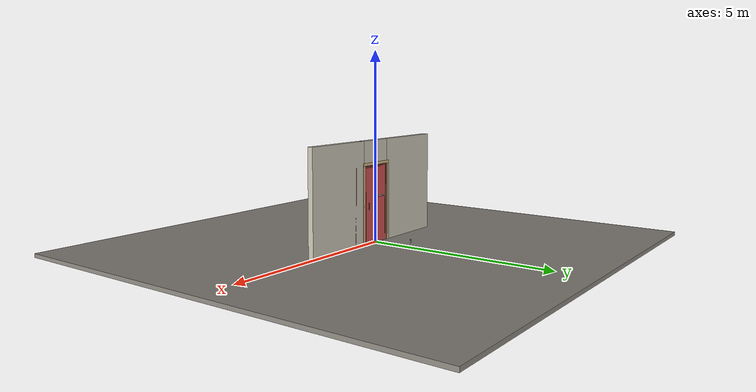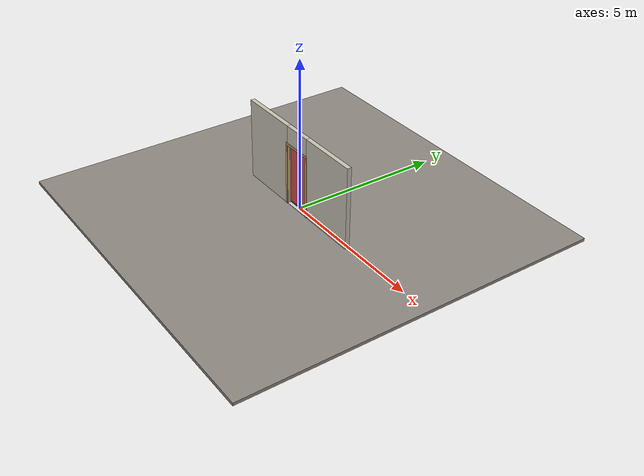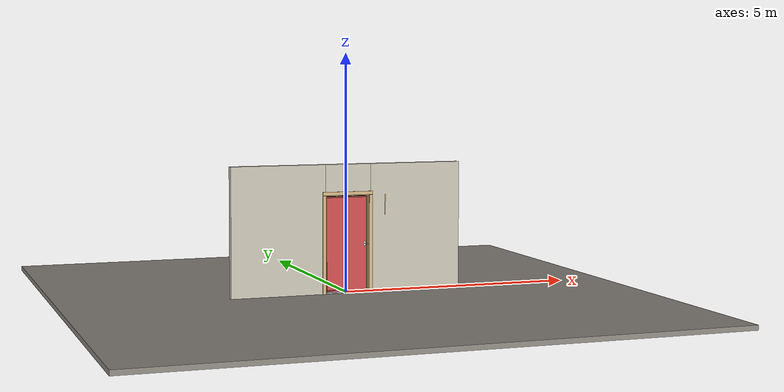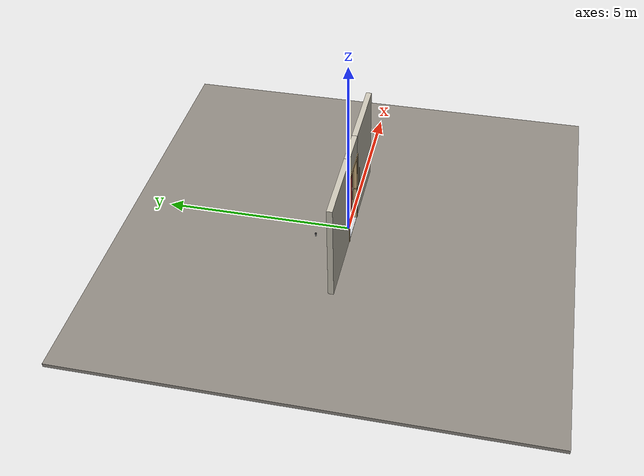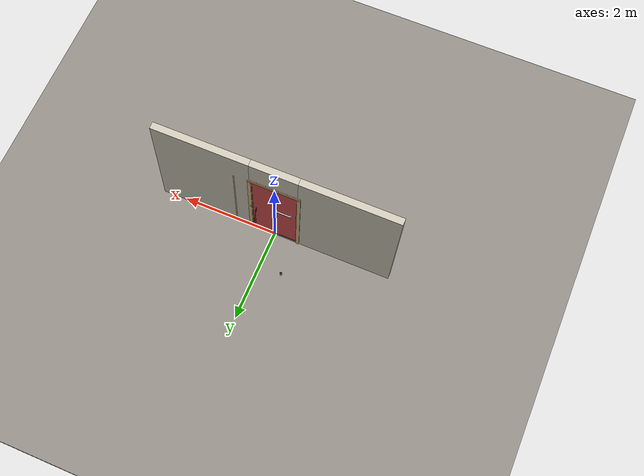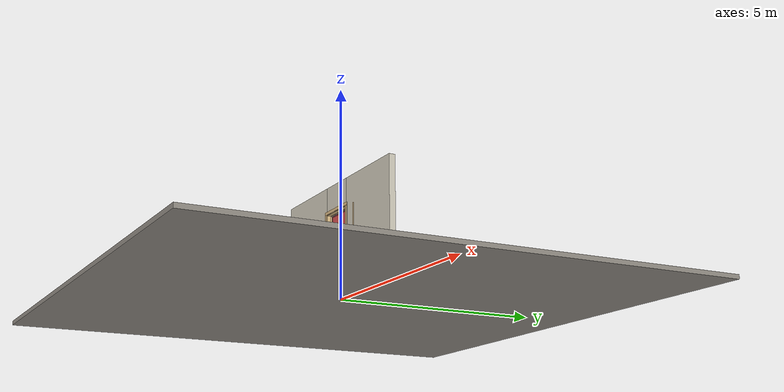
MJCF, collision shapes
<?xml version="1.0" ?>
<mujoco model="db0369_swing_single_full">
  <compiler angle="radian" meshdir="../../hardware" texturedir="../../textures" autolimits="true" inertiafromgeom="false"/>
  <option timestep="0.002" integrator="implicitfast" cone="elliptic" impratio="10" noslip_iterations="3">
    <flag multiccd="enable"/>
  </option>
  <size memory="16M"/>
  <default>
    <geom condim="4" solref="0.005 1" solimp="0.95 0.99 0.001"/>
    <joint solreflimit="0.005 1" solimplimit="0.95 0.99 0.001"/>
    <tendon solreflimit="0.005 1"/>
    <equality solref="0.002 1"/>
  </default>
  <visual>
    <headlight ambient="0.4 0.4 0.4" diffuse="0.7 0.7 0.7" specular="0.2 0.2 0.2"/>
    <quality shadowsize="4096"/>
    <map znear="0.01" zfar="60"/>
  </visual>
  <asset>
    <mesh name="hinge_cd446677f5" file="hinge_cd446677f5.obj"/>
    <mesh name="hinge_jamb_4c4cd7f884" file="hinge_jamb_4c4cd7f884.obj"/>
    <mesh name="peephole_f829311a59" file="peephole_f829311a59.obj"/>
    <mesh name="pull_1e5d69a91a" file="pull_1e5d69a91a.obj"/>
    <material name="mat_floor" rgba="0.55 0.53 0.5 1" specular="0.2" shininess="0.15" reflectance="0"/>
    <material name="mat_wall" rgba="0.78 0.76 0.7 1" specular="0.2" shininess="0.1" reflectance="0"/>
    <material name="mat_leaf" rgba="0.2 0.2 0.2 0.5" specular="0.2" shininess="0.2" reflectance="0.1"/>
    <material name="mat_mesh_infill" rgba="0.6 0.62 0.64 0.55" specular="0.68" shininess="0.3" reflectance="0.1"/>
    <material name="mat_hinge" rgba="0.65 0.66 0.68 1" specular="0.74" shininess="0.5" reflectance="0.36"/>
    <material name="mat_op_aluminum" rgba="0.8 0.81 0.83 1" specular="0.8" shininess="0.6" reflectance="0.4"/>
    <material name="mat_op_stainless" rgba="0.75 0.76 0.77 1" specular="0.8" shininess="0.65" reflectance="0.4"/>
    <material name="mat_bolt" rgba="0.85 0.66 0.3 1" specular="0.8" shininess="0.75" reflectance="0.4"/>
    <material name="mat_frame" rgba="0.82 0.7 0.5 1" specular="0.2" shininess="0.45" reflectance="0"/>
    <material name="mat_seal" rgba="0.1 0.1 0.1 1" specular="0.2" shininess="0.1" reflectance="0"/>
    <material name="mat_threshold" rgba="0.8 0.81 0.83 1" specular="0.8" shininess="0.6" reflectance="0.4"/>
    <material name="mat_closer" rgba="0.8 0.81 0.83 1" specular="0.8" shininess="0.6" reflectance="0.4"/>
    <material name="mat_peephole" rgba="0.85 0.66 0.3 1" specular="0.8" shininess="0.75" reflectance="0.4"/>
    <material name="mat_sidelite" rgba="0.85 0.92 0.95 0.25" specular="0.2" shininess="0.95" reflectance="0.1"/>
    <material name="mat_transom" rgba="0.85 0.92 0.95 0.25" specular="0.2" shininess="0.95" reflectance="0.1"/>
    <material name="mat_bumper_stop" rgba="0.08 0.08 0.08 1" specular="0.2" shininess="0.1" reflectance="0"/>
    <material name="mat_stop_base" rgba="0.9 0.9 0.92 1" specular="0.8" shininess="0.9" reflectance="0.4"/>
    <texture name="skybox" type="skybox" builtin="gradient" rgb1="0.6 0.7 0.85" rgb2="0.9 0.92 0.95" width="256" height="256"/>
  </asset>
  <worldbody>
    <light name="sun" pos="1.5 -2.5 4" dir="-0.3 0.5 -0.8" directional="true" diffuse="0.8 0.8 0.8" specular="0.3 0.3 0.3" castshadow="true"/>
    <light name="fill" pos="-1.5 2.5 3" dir="0.3 -0.5 -0.7" directional="true" diffuse="0.35 0.35 0.4" castshadow="false"/>
    <camera name="robot_view" pos="0 -2.595187 1.734312" xyaxes="1 0 0 0 0.26963 0.962964" fovy="52"/>
    <camera name="far_view" pos="0 2.489187 1.734312" xyaxes="-1 0 0 0 -0.26963 0.962964" fovy="52"/>
    <camera name="iso" pos="1.932062 -2.188438 2.141063" xyaxes="0.741536 0.670913 0 -0.242917 0.268487 0.932151" fovy="46"/>
    <camera name="detail_handle" pos="0.5465 -0.7275 1.296" xyaxes="0.97561 0.219512 0 -0.070934 0.315262 0.94635" fovy="38"/>
    <geom name="floor" type="box" size="6 6 0.05" pos="0 0 -0.05" material="mat_floor" group="0" contype="1" conaffinity="1" friction="0.8 0.005 0.0001" density="2400"/>
    <geom name="wall_left" type="box" size="1.01025 0.0725 1.35" pos="-1.48975 -0.053 1.35" material="mat_wall" group="0" contype="1" conaffinity="1" friction="0.6 0.005 0.0001" density="800"/>
    <geom name="wall_right" type="box" size="0.99525 0.0725 1.35" pos="1.50475 -0.053 1.35" material="mat_wall" group="0" contype="1" conaffinity="1" friction="0.6 0.005 0.0001" density="800"/>
    <geom name="wall_header" type="box" size="0.4945 0.0725 0.303" pos="0.015 -0.053 2.397" material="mat_wall" group="0" contype="1" conaffinity="1" friction="0.6 0.005 0.0001" density="800"/>
    <geom name="hinge_0_jamb" type="mesh" mesh="hinge_jamb_4c4cd7f884" pos="-0.4575 0.0195 0.267" quat="0 1 0 0" material="mat_hinge" group="1" contype="0" conaffinity="0" density="7850"/>
    <geom name="hinge_1_jamb" type="mesh" mesh="hinge_jamb_4c4cd7f884" pos="-0.4575 0.0195 1.029" quat="0 1 0 0" material="mat_hinge" group="1" contype="0" conaffinity="0" density="7850"/>
    <geom name="hinge_2_jamb" type="mesh" mesh="hinge_jamb_4c4cd7f884" pos="-0.4575 0.0195 1.861" quat="0 1 0 0" material="mat_hinge" group="1" contype="0" conaffinity="0" density="7850"/>
    <geom name="jamb_hinge" type="box" size="0.0095 0.0725 1.0225" pos="-0.47 -0.053 1.0225" material="mat_frame" group="0" contype="1" conaffinity="1" friction="0.6 0.005 0.0001" density="400"/>
    <geom name="strike_1016_wall_n" type="box" size="0.0245 0.06 0.0115" pos="0.485 -0.0655 1.016" material="mat_frame" group="0" contype="1" conaffinity="1" friction="0.6 0.005 0.0001" density="400"/>
    <geom name="strike_1016_wall_p" type="box" size="0.0245 0.008 0.0115" pos="0.485 0.0135 1.016" material="mat_frame" group="0" contype="1" conaffinity="1" friction="0.6 0.005 0.0001" density="400"/>
    <geom name="strike_1016_ramp" type="box" size="0.0245 0.015977 0.0115" pos="0.489002 0.028066 1.016" quat="0.984601 0 0 -0.174819" material="mat_frame" group="0" contype="1" conaffinity="1" friction="0.12 0.005 0.0001" density="400"/>
    <geom name="strike_1016_back" type="box" size="0.0175 0.0055 0.0115" pos="0.492 0 1.016" material="mat_frame" group="0" contype="1" conaffinity="1" friction="0.6 0.005 0.0001" density="400"/>
    <geom name="jamb_strike_0" type="box" size="0.0245 0.0725 0.50225" pos="0.485 -0.053 0.50225" material="mat_frame" group="0" contype="1" conaffinity="1" friction="0.6 0.005 0.0001" density="400"/>
    <geom name="jamb_strike_1" type="box" size="0.0245 0.0725 0.50875" pos="0.485 -0.053 1.53625" material="mat_frame" group="0" contype="1" conaffinity="1" friction="0.6 0.005 0.0001" density="400"/>
    <geom name="jamb_head" type="box" size="0.4945 0.0725 0.0095" pos="0.015 -0.053 2.0545" material="mat_frame" group="0" contype="1" conaffinity="1" friction="0.6 0.005 0.0001" density="400"/>
    <geom name="head_stud" type="box" size="0.4945 0.0725 0.015" pos="0.015 -0.053 2.079" material="mat_wall" group="0" contype="1" conaffinity="1" friction="0.6 0.005 0.0001" density="500"/>
    <geom name="stop_hinge" type="box" size="0.0055 0.016 1.0225" pos="-0.455 -0.029 1.0225" material="mat_frame" group="0" contype="1" conaffinity="1" friction="0.6 0.005 0.0001" density="400"/>
    <geom name="stop_strike" type="box" size="0.0055 0.016 1.0225" pos="0.455 -0.029 1.0225" material="mat_frame" group="0" contype="1" conaffinity="1" friction="0.6 0.005 0.0001" density="400"/>
    <geom name="stop_head" type="box" size="0.4605 0.016 0.0055" pos="0 -0.029 2.0395" material="mat_frame" group="0" contype="1" conaffinity="1" friction="0.6 0.005 0.0001" density="400"/>
    <geom name="seal_hinge" type="box" size="0.004 0.003 1.0225" pos="-0.4575 -0.0155 1.0225" material="mat_seal" group="1" contype="0" conaffinity="0" density="1100"/>
    <geom name="seal_strike" type="box" size="0.004 0.003 1.0225" pos="0.4575 -0.0155 1.0225" material="mat_seal" group="1" contype="0" conaffinity="0" density="1100"/>
    <geom name="seal_head" type="box" size="0.4405 0.003 0.008" pos="0 -0.0155 2.033" material="mat_seal" group="1" contype="0" conaffinity="0" density="1100"/>
    <geom name="casing_l_n" type="box" size="0.035 0.008 1.032" pos="-0.5095 -0.1335 1.0225" material="mat_frame" group="2" contype="0" conaffinity="0" density="400"/>
    <geom name="casing_r_n" type="box" size="0.035 0.008 1.032" pos="0.5095 -0.1335 1.0225" material="mat_frame" group="2" contype="0" conaffinity="0" density="400"/>
    <geom name="casing_h_n" type="box" size="0.5445 0.008 0.035" pos="0 -0.1335 2.094" material="mat_frame" group="2" contype="0" conaffinity="0" density="400"/>
    <geom name="casing_l_p" type="box" size="0.035 0.008 1.032" pos="-0.5095 0.0275 1.0225" material="mat_frame" group="2" contype="0" conaffinity="0" density="400"/>
    <geom name="casing_r_p" type="box" size="0.035 0.008 1.032" pos="0.5095 0.0275 1.0225" material="mat_frame" group="2" contype="0" conaffinity="0" density="400"/>
    <geom name="casing_h_p" type="box" size="0.5445 0.008 0.035" pos="0 0.0275 2.094" material="mat_frame" group="2" contype="0" conaffinity="0" density="400"/>
    <geom name="threshold" type="box" size="0.4795 0.0725 0.0065" pos="0 -0.053 0.0065" material="mat_threshold" group="0" contype="1" conaffinity="1" friction="0.5 0.005 0.0001" density="2700"/>
    <geom name="sidelite_glass" type="box" size="0.15 0.003 0.9725" pos="0.6705 0 1.0225" material="mat_sidelite" group="0" contype="1" conaffinity="1" friction="0.6 0.005 0.0001" density="2500"/>
    <geom name="sidelite_frame" type="box" size="0.02 0.0725 1.0225" pos="0.8405 -0.053 1.0225" material="mat_frame" group="0" contype="1" conaffinity="1" friction="0.6 0.005 0.0001" density="600"/>
    <geom name="transom_glass" type="box" size="0.4605 0.003 0.18" pos="0 0 2.295" material="mat_transom" group="0" contype="1" conaffinity="1" friction="0.6 0.005 0.0001" density="2500"/>
    <geom name="door_stop_base" type="cylinder" size="0.022 0.003" pos="-0.4735 0.7964 0.003" material="mat_stop_base" group="0" contype="1" conaffinity="1" friction="0.6 0.005 0.0001" density="7850"/>
    <geom name="door_stop_post" type="cylinder" size="0.012 0.0255" pos="-0.4735 0.7964 0.0315" material="mat_stop_base" group="0" contype="1" conaffinity="1" friction="0.6 0.005 0.0001" density="7850"/>
    <geom name="door_stop_bumper" type="cylinder" size="0.022 0.02" pos="-0.4735 0.7964 0.077" material="mat_bumper_stop" group="0" contype="1" conaffinity="1" friction="0.6 0.005 0.0001" density="1100"/>
    <site name="approach_point" pos="0 -1.5 0" quat="1 0 0 0" size="0.05" rgba="0.2 0.9 0.2 0.5" group="4"/>
    <site name="goal_point" pos="0 1.5 0" quat="1 0 0 0" size="0.05" rgba="0.2 0.9 0.2 0.5" group="4"/>
    <site name="door_plane_center" pos="0 0 1.0225" quat="1 0 0 0" size="0.02" rgba="0.2 0.9 0.2 0.5" group="4"/>
    <body name="leaf" pos="-0.4605 0 0">
      <inertial pos="0.459265 0.000466 1.030119" mass="126.509819" quat="-0.499758 0.499741 0.500315 0.500186" diaginertia="8.896352404 42.815116234 51.691898315"/>
      <joint name="leaf_hinge" type="hinge" axis="0 0 1" pos="0.003 0.0195 0" limited="true" range="0 1.570796" solreflimit="0.02 1" damping="4.25611" frictionloss="5.90041" stiffness="3" springref="-2.556844" armature="0.02"/>
      <geom name="leaf_slab_col" type="box" size="0.457 0.0125 1.012" pos="0.46 0 1.029" material="mat_leaf" group="3" contype="1" conaffinity="1" rgba="0.8 0.3 0.3 0.25" friction="0.35 0.005 0.0001" density="1"/>
      <geom name="leaf_rail_b" type="box" size="0.457 0.0125 0.0225" pos="0.46 0 0.0395" material="mat_leaf" group="1" contype="0" conaffinity="0" density="1"/>
      <geom name="leaf_rail_t" type="box" size="0.457 0.0125 0.0225" pos="0.46 0 2.0185" material="mat_leaf" group="1" contype="0" conaffinity="0" density="1"/>
      <geom name="leaf_stile_h" type="box" size="0.0225 0.0125 1.012" pos="0.0255 0 1.029" material="mat_leaf" group="1" contype="0" conaffinity="0" density="1"/>
      <geom name="leaf_stile_l" type="box" size="0.0225 0.0125 1.012" pos="0.8945 0 1.029" material="mat_leaf" group="1" contype="0" conaffinity="0" density="1"/>
      <geom name="leaf_mesh" type="box" size="0.412 0.0015 0.967" pos="0.46 0 1.029" material="mat_mesh_infill" group="1" contype="0" conaffinity="0" density="1"/>
      <geom name="hinge_0" type="mesh" mesh="hinge_cd446677f5" pos="0.003 0.0195 0.267" quat="0 1 0 0" material="mat_hinge" group="1" contype="0" conaffinity="0" density="7850"/>
      <geom name="hinge_1" type="mesh" mesh="hinge_cd446677f5" pos="0.003 0.0195 1.029" quat="0 1 0 0" material="mat_hinge" group="1" contype="0" conaffinity="0" density="7850"/>
      <geom name="hinge_2" type="mesh" mesh="hinge_cd446677f5" pos="0.003 0.0195 1.861" quat="0 1 0 0" material="mat_hinge" group="1" contype="0" conaffinity="0" density="7850"/>
      <geom name="leaf_inside_pull_p" type="mesh" mesh="pull_1e5d69a91a" pos="0.827 0.0125 1.016" quat="-0.707107 0.707107 0 0" material="mat_op_stainless" group="1" contype="0" conaffinity="0" density="3000"/>
      <geom name="leaf_inside_pull_col_p" type="capsule" size="0.0095 0.08" pos="0.827 0.0725 1.016" material="mat_op_stainless" group="3" contype="1" conaffinity="1" rgba="0.8 0.3 0.3 0.25" friction="0.7 0.01 0.0001" density="3000"/>
      <geom name="leaf_pushbutton_housing" type="box" size="0.02 0.006 0.045" pos="0.872 -0.0185 1.016" material="mat_op_aluminum" group="1" contype="0" conaffinity="0" density="2700"/>
      <geom name="leaf_latch_bolt_faceplate" type="box" size="0.0006 0.01 0.0215" pos="0.9164 0 1.016" material="mat_bolt" group="1" contype="0" conaffinity="0" density="8500"/>
      <geom name="closer_pneumatic" type="cylinder" size="0.015 0.16" pos="0.25 0.0425 1.2144" quat="0.707107 0 0.707107 0" material="mat_closer" group="1" contype="0" conaffinity="0" density="2700"/>
      <geom name="closer_pneumatic_bracket_0" type="box" size="0.008 0.016 0.018" pos="0.1 0.0285 1.2144" material="mat_closer" group="1" contype="0" conaffinity="0" density="2700"/>
      <geom name="closer_pneumatic_bracket_1" type="box" size="0.008 0.016 0.018" pos="0.4 0.0285 1.2144" material="mat_closer" group="1" contype="0" conaffinity="0" density="2700"/>
      <geom name="peephole" type="mesh" mesh="peephole_f829311a59" pos="0.46 -0.0125 1.517" quat="0.707107 0.707107 0 0" material="mat_peephole" group="2" contype="0" conaffinity="0" density="8500"/>
      <site name="leaf_inside_pull_grip_p" pos="0.827 0.0725 1.016" quat="1 0 0 0" size="0.012" rgba="0.2 0.9 0.2 0.5" group="4"/>
      <site name="leaf_edge_mid" pos="0.917 0 1.012" quat="1 0 0 0" size="0.02" rgba="0.2 0.9 0.2 0.5" group="4"/>
      <body name="leaf_pushbutton" pos="0.872 -0.0225 1.016">
        <inertial pos="0 -0.006 0" mass="0.010179" quat="0 0 0.707107 0.707107" diaginertia="0.000000377 0.000000377 0.000000509"/>
        <joint name="leaf_pushbutton_slide" type="slide" axis="0 1 0" limited="true" range="0 0.006" damping="16.008936" frictionloss="0.5" stiffness="400" springref="-0.0075" armature="0.15"/>
        <geom name="leaf_pushbutton_geom" type="cylinder" size="0.01 0.006" pos="0 -0.006 0" quat="0.707107 -0.707107 0 0" material="mat_op_aluminum" group="0" contype="1" conaffinity="1" friction="0.6 0.005 0.0001" density="2700"/>
        <site name="leaf_push" pos="0 -0.012 0" quat="1 0 0 0" size="0.01" rgba="0.2 0.9 0.2 0.5" group="4"/>
      </body>
      <body name="leaf_latch_bolt" pos="0.917 0 1.016">
        <inertial pos="-0.008 0 0" mass="0.014242" quat="0 0 0.707107 0.707107" diaginertia="0.00000011 0.000001386 0.000001386"/>
        <joint name="leaf_latch_bolt_slide" type="slide" axis="-1 0 0" limited="true" range="0 0.01" damping="2" frictionloss="0.3" stiffness="300" springref="-0.006667" armature="0.1"/>
        <geom name="leaf_latch_bolt_capsule" type="capsule" size="0.004 0.014" pos="-0.008 0 0" quat="0.707107 0 0.707107 0" material="mat_bolt" group="0" contype="1" conaffinity="1" friction="0.2 0.005 0.0001" density="8500"/>
      </body>
    </body>
  </worldbody>
  <tendon>
    <fixed name="leaf_latch_bolt_coupling" limited="true" range="0 10">
      <joint joint="leaf_latch_bolt_slide" coef="1"/>
      <joint joint="leaf_pushbutton_slide" coef="-2"/>
    </fixed>
  </tendon>
  <sensor>
    <jointpos name="leaf_hinge_pos" joint="leaf_hinge"/>
    <jointvel name="leaf_hinge_vel" joint="leaf_hinge"/>
    <jointpos name="leaf_pushbutton_slide_pos" joint="leaf_pushbutton_slide"/>
    <jointvel name="leaf_pushbutton_slide_vel" joint="leaf_pushbutton_slide"/>
    <jointpos name="leaf_latch_bolt_slide_pos" joint="leaf_latch_bolt_slide"/>
    <jointvel name="leaf_latch_bolt_slide_vel" joint="leaf_latch_bolt_slide"/>
  </sensor>
</mujoco>
